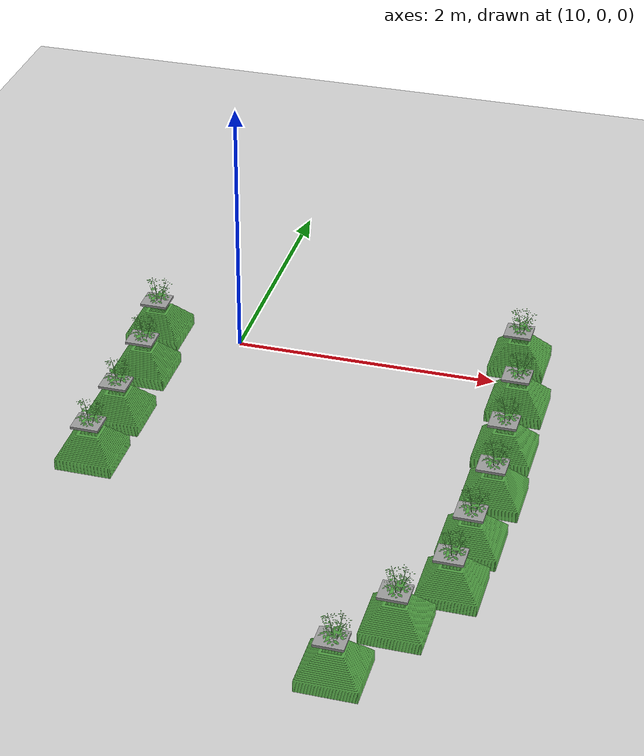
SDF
<sdf version="1.6">
 <world name="default">
  <model name="ground_plane">
   <static>1</static>
   <link name="link">
    <collision name="collision">
     <geometry><plane><normal>0 0 1</normal><size>100 100</size></plane></geometry>
     <surface><friction><ode><mu>100</mu><mu2>50</mu2></ode></friction></surface>
    </collision>
    <visual name="visual">
     <cast_shadows>0</cast_shadows>
     <geometry><plane><normal>0 0 1</normal><size>100 100</size></plane></geometry>
     <material>
      <script><uri>file://media/materials/scripts/gazebo.material</uri><name>Gazebo/Grey</name></script>
     </material>
    </visual>
   </link>
  </model>
  <model name="plant_0">
   <link name="link_0">
    <inertial>
     <mass>1</mass>
     <inertia>
      <ixx>0.0134051</ixx>
      <ixy>0</ixy>
      <ixz>0</ixz>
      <iyy>0.0134051</iyy>
      <iyz>0</iyz>
      <izz>0.0254102</izz>
     </inertia>
    </inertial>
    <gravity>0</gravity>
    <visual name="visual">
     <geometry><mesh><uri>model://square_pot/pot.stl</uri><scale>0.033 0.033 0.02</scale></mesh></geometry>
     <material>
      <lighting>1</lighting>
      <script><uri>file://media/materials/scripts/gazebo.material</uri><name>Gazebo/Grass</name></script>
      <ambient>0.3 0.3 0.3 1</ambient>
      <diffuse>0.7 0.7 0.7 1</diffuse>
      <specular>0.01 0.01 0.01 1</specular>
      <emissive>0 0 0 1</emissive>
      <shader type="vertex"><normal_map>__default__</normal_map></shader>
     </material>
    </visual>
    <collision name="collision">
     <pose>0 0 0.25 0 -0 0</pose>
     <geometry><box><size>0.4 0.4 0.4</size></box></geometry>
     <surface>
      <friction>
       <ode><mu>1</mu><mu2>1</mu2><fdir1>0 0 0</fdir1><slip1>0</slip1><slip2>0</slip2></ode>
       <torsional>
        <coefficient>1</coefficient>
        <patch_radius>0</patch_radius>
        <surface_radius>0</surface_radius>
        <use_patch_radius>1</use_patch_radius>
        <ode><slip>0</slip></ode>
       </torsional>
      </friction>
      <bounce><restitution_coefficient>0</restitution_coefficient><threshold>1e+06</threshold></bounce>
      <contact>
       <collide_without_contact>1</collide_without_contact>
       <collide_without_contact_bitmask>1</collide_without_contact_bitmask>
       <collide_bitmask>1</collide_bitmask>
       <ode>
        <soft_cfm>0</soft_cfm>
        <soft_erp>0.2</soft_erp>
        <kp>1e+13</kp>
        <kd>1</kd>
        <max_vel>0.01</max_vel>
        <min_depth>0</min_depth>
       </ode>
       <bullet>
        <split_impulse>1</split_impulse>
        <split_impulse_penetration_threshold>-0.01</split_impulse_penetration_threshold>
        <soft_cfm>0</soft_cfm>
        <soft_erp>0.2</soft_erp>
        <kp>1e+13</kp>
        <kd>1</kd>
       </bullet>
      </contact>
     </surface>
    </collision>
   </link>
   <link name="link_0_0">
    <pose>-0.011441 -0.008338 0.308474 0 -0 0</pose>
    <inertial>
     <mass>0.000736153</mass>
     <inertia>
      <ixx>2.11165e-06</ixx>
      <ixy>0</ixy>
      <ixz>0</ixz>
      <iyy>2.64382e-06</iyy>
      <iyz>0</iyz>
      <izz>4.70976e-06</izz>
     </inertia>
    </inertial>
    <visual name="visual">
     <geometry><box><size>0.206678 0.18452 0.019291</size></box></geometry>
     <material>
      <lighting>1</lighting>
      <script><uri>file://media/materials/scripts/gazebo.material</uri><name>Gazebo/Grey</name></script>
      <ambient>0.3 0.3 0.3 1</ambient>
      <diffuse>0.7 0.7 0.7 1</diffuse>
      <specular>0.01 0.01 0.01 1</specular>
      <emissive>0 0 0 1</emissive>
     </material>
    </visual>
    <collision name="collision">
     <geometry><box><size>0.206678 0.18452 0.019291</size></box></geometry>
     <surface>
      <friction>
       <ode><mu>1</mu><mu2>1</mu2><fdir1>0 0 0</fdir1><slip1>0</slip1><slip2>0</slip2></ode>
       <torsional>
        <coefficient>1</coefficient>
        <patch_radius>0</patch_radius>
        <surface_radius>0</surface_radius>
        <use_patch_radius>1</use_patch_radius>
        <ode><slip>0</slip></ode>
       </torsional>
      </friction>
      <bounce><restitution_coefficient>0</restitution_coefficient><threshold>1e+06</threshold></bounce>
      <contact>
       <collide_without_contact>0</collide_without_contact>
       <collide_without_contact_bitmask>1</collide_without_contact_bitmask>
       <collide_bitmask>1</collide_bitmask>
       <ode>
        <soft_cfm>0</soft_cfm>
        <soft_erp>0.2</soft_erp>
        <kp>1e+13</kp>
        <kd>1</kd>
        <max_vel>0.01</max_vel>
        <min_depth>0</min_depth>
       </ode>
       <bullet>
        <split_impulse>1</split_impulse>
        <split_impulse_penetration_threshold>-0.01</split_impulse_penetration_threshold>
        <soft_cfm>0</soft_cfm>
        <soft_erp>0.2</soft_erp>
        <kp>1e+13</kp>
        <kd>1</kd>
       </bullet>
      </contact>
     </surface>
    </collision>
   </link>
   <static>1</static>
   <pose>9.44824 -1.19741 0 0 -0 0</pose>
  </model>
  <model name="plant_104">
   <link name="link_0">
    <inertial>
     <mass>1</mass>
     <inertia>
      <ixx>0.0134051</ixx>
      <ixy>0</ixy>
      <ixz>0</ixz>
      <iyy>0.0134051</iyy>
      <iyz>0</iyz>
      <izz>0.0254102</izz>
     </inertia>
    </inertial>
    <gravity>0</gravity>
    <visual name="visual">
     <geometry><mesh><uri>model://square_pot/pot.stl</uri><scale>0.033 0.033 0.02</scale></mesh></geometry>
     <material>
      <lighting>1</lighting>
      <script><uri>file://media/materials/scripts/gazebo.material</uri><name>Gazebo/Grass</name></script>
      <ambient>0.3 0.3 0.3 1</ambient>
      <diffuse>0.7 0.7 0.7 1</diffuse>
      <specular>0.01 0.01 0.01 1</specular>
      <emissive>0 0 0 1</emissive>
      <shader type="vertex"><normal_map>__default__</normal_map></shader>
     </material>
    </visual>
    <collision name="collision">
     <pose>0 0 0.25 0 -0 0</pose>
     <geometry><box><size>0.4 0.4 0.4</size></box></geometry>
     <surface>
      <friction>
       <ode><mu>1</mu><mu2>1</mu2><fdir1>0 0 0</fdir1><slip1>0</slip1><slip2>0</slip2></ode>
       <torsional>
        <coefficient>1</coefficient>
        <patch_radius>0</patch_radius>
        <surface_radius>0</surface_radius>
        <use_patch_radius>1</use_patch_radius>
        <ode><slip>0</slip></ode>
       </torsional>
      </friction>
      <bounce><restitution_coefficient>0</restitution_coefficient><threshold>1e+06</threshold></bounce>
      <contact>
       <collide_without_contact>1</collide_without_contact>
       <collide_without_contact_bitmask>1</collide_without_contact_bitmask>
       <collide_bitmask>1</collide_bitmask>
       <ode>
        <soft_cfm>0</soft_cfm>
        <soft_erp>0.2</soft_erp>
        <kp>1e+13</kp>
        <kd>1</kd>
        <max_vel>0.01</max_vel>
        <min_depth>0</min_depth>
       </ode>
       <bullet>
        <split_impulse>1</split_impulse>
        <split_impulse_penetration_threshold>-0.01</split_impulse_penetration_threshold>
        <soft_cfm>0</soft_cfm>
        <soft_erp>0.2</soft_erp>
        <kp>1e+13</kp>
        <kd>1</kd>
       </bullet>
      </contact>
     </surface>
    </collision>
   </link>
   <link name="link_0_0">
    <pose>-0.011441 -0.008338 0.308474 0 -0 0</pose>
    <inertial>
     <mass>0.000736153</mass>
     <inertia>
      <ixx>2.11165e-06</ixx>
      <ixy>0</ixy>
      <ixz>0</ixz>
      <iyy>2.64382e-06</iyy>
      <iyz>0</iyz>
      <izz>4.70976e-06</izz>
     </inertia>
    </inertial>
    <visual name="visual">
     <geometry><box><size>0.206678 0.18452 0.019291</size></box></geometry>
     <material>
      <lighting>1</lighting>
      <script><uri>file://media/materials/scripts/gazebo.material</uri><name>Gazebo/Grey</name></script>
      <ambient>0.3 0.3 0.3 1</ambient>
      <diffuse>0.7 0.7 0.7 1</diffuse>
      <specular>0.01 0.01 0.01 1</specular>
      <emissive>0 0 0 1</emissive>
     </material>
    </visual>
    <collision name="collision">
     <geometry><box><size>0.206678 0.18452 0.019291</size></box></geometry>
     <surface>
      <friction>
       <ode><mu>1</mu><mu2>1</mu2><fdir1>0 0 0</fdir1><slip1>0</slip1><slip2>0</slip2></ode>
       <torsional>
        <coefficient>1</coefficient>
        <patch_radius>0</patch_radius>
        <surface_radius>0</surface_radius>
        <use_patch_radius>1</use_patch_radius>
        <ode><slip>0</slip></ode>
       </torsional>
      </friction>
      <bounce><restitution_coefficient>0</restitution_coefficient><threshold>1e+06</threshold></bounce>
      <contact>
       <collide_without_contact>0</collide_without_contact>
       <collide_without_contact_bitmask>1</collide_without_contact_bitmask>
       <collide_bitmask>1</collide_bitmask>
       <ode>
        <soft_cfm>0</soft_cfm>
        <soft_erp>0.2</soft_erp>
        <kp>1e+13</kp>
        <kd>1</kd>
        <max_vel>0.01</max_vel>
        <min_depth>0</min_depth>
       </ode>
       <bullet>
        <split_impulse>1</split_impulse>
        <split_impulse_penetration_threshold>-0.01</split_impulse_penetration_threshold>
        <soft_cfm>0</soft_cfm>
        <soft_erp>0.2</soft_erp>
        <kp>1e+13</kp>
        <kd>1</kd>
       </bullet>
      </contact>
     </surface>
    </collision>
   </link>
   <static>1</static>
   <pose>9.43548 -1.73197 0 0 -0 0</pose>
  </model>
  <model name="plant_107">
   <link name="link_0">
    <inertial>
     <mass>1</mass>
     <inertia>
      <ixx>0.0134051</ixx>
      <ixy>0</ixy>
      <ixz>0</ixz>
      <iyy>0.0134051</iyy>
      <iyz>0</iyz>
      <izz>0.0254102</izz>
     </inertia>
    </inertial>
    <gravity>0</gravity>
    <visual name="visual">
     <geometry><mesh><uri>model://square_pot/pot.stl</uri><scale>0.033 0.033 0.02</scale></mesh></geometry>
     <material>
      <lighting>1</lighting>
      <script><uri>file://media/materials/scripts/gazebo.material</uri><name>Gazebo/Grass</name></script>
      <ambient>0.3 0.3 0.3 1</ambient>
      <diffuse>0.7 0.7 0.7 1</diffuse>
      <specular>0.01 0.01 0.01 1</specular>
      <emissive>0 0 0 1</emissive>
      <shader type="vertex"><normal_map>__default__</normal_map></shader>
     </material>
    </visual>
    <collision name="collision">
     <pose>0 0 0.25 0 -0 0</pose>
     <geometry><box><size>0.4 0.4 0.4</size></box></geometry>
     <surface>
      <friction>
       <ode><mu>1</mu><mu2>1</mu2><fdir1>0 0 0</fdir1><slip1>0</slip1><slip2>0</slip2></ode>
       <torsional>
        <coefficient>1</coefficient>
        <patch_radius>0</patch_radius>
        <surface_radius>0</surface_radius>
        <use_patch_radius>1</use_patch_radius>
        <ode><slip>0</slip></ode>
       </torsional>
      </friction>
      <bounce><restitution_coefficient>0</restitution_coefficient><threshold>1e+06</threshold></bounce>
      <contact>
       <collide_without_contact>1</collide_without_contact>
       <collide_without_contact_bitmask>1</collide_without_contact_bitmask>
       <collide_bitmask>1</collide_bitmask>
       <ode>
        <soft_cfm>0</soft_cfm>
        <soft_erp>0.2</soft_erp>
        <kp>1e+13</kp>
        <kd>1</kd>
        <max_vel>0.01</max_vel>
        <min_depth>0</min_depth>
       </ode>
       <bullet>
        <split_impulse>1</split_impulse>
        <split_impulse_penetration_threshold>-0.01</split_impulse_penetration_threshold>
        <soft_cfm>0</soft_cfm>
        <soft_erp>0.2</soft_erp>
        <kp>1e+13</kp>
        <kd>1</kd>
       </bullet>
      </contact>
     </surface>
    </collision>
   </link>
   <link name="link_0_0">
    <pose>-0.011441 -0.008338 0.308474 0 -0 0</pose>
    <inertial>
     <mass>0.000736153</mass>
     <inertia>
      <ixx>2.11165e-06</ixx>
      <ixy>0</ixy>
      <ixz>0</ixz>
      <iyy>2.64382e-06</iyy>
      <iyz>0</iyz>
      <izz>4.70976e-06</izz>
     </inertia>
    </inertial>
    <visual name="visual">
     <geometry><box><size>0.206678 0.18452 0.019291</size></box></geometry>
     <material>
      <lighting>1</lighting>
      <script><uri>file://media/materials/scripts/gazebo.material</uri><name>Gazebo/Grey</name></script>
      <ambient>0.3 0.3 0.3 1</ambient>
      <diffuse>0.7 0.7 0.7 1</diffuse>
      <specular>0.01 0.01 0.01 1</specular>
      <emissive>0 0 0 1</emissive>
     </material>
    </visual>
    <collision name="collision">
     <geometry><box><size>0.206678 0.18452 0.019291</size></box></geometry>
     <surface>
      <friction>
       <ode><mu>1</mu><mu2>1</mu2><fdir1>0 0 0</fdir1><slip1>0</slip1><slip2>0</slip2></ode>
       <torsional>
        <coefficient>1</coefficient>
        <patch_radius>0</patch_radius>
        <surface_radius>0</surface_radius>
        <use_patch_radius>1</use_patch_radius>
        <ode><slip>0</slip></ode>
       </torsional>
      </friction>
      <bounce><restitution_coefficient>0</restitution_coefficient><threshold>1e+06</threshold></bounce>
      <contact>
       <collide_without_contact>0</collide_without_contact>
       <collide_without_contact_bitmask>1</collide_without_contact_bitmask>
       <collide_bitmask>1</collide_bitmask>
       <ode>
        <soft_cfm>0</soft_cfm>
        <soft_erp>0.2</soft_erp>
        <kp>1e+13</kp>
        <kd>1</kd>
        <max_vel>0.01</max_vel>
        <min_depth>0</min_depth>
       </ode>
       <bullet>
        <split_impulse>1</split_impulse>
        <split_impulse_penetration_threshold>-0.01</split_impulse_penetration_threshold>
        <soft_cfm>0</soft_cfm>
        <soft_erp>0.2</soft_erp>
        <kp>1e+13</kp>
        <kd>1</kd>
       </bullet>
      </contact>
     </surface>
    </collision>
   </link>
   <static>1</static>
   <pose>9.43391 -0.585748 0 0 -0 0</pose>
  </model>
  <model name="plant_108">
   <link name="link_0">
    <inertial>
     <mass>1</mass>
     <inertia>
      <ixx>0.0134051</ixx>
      <ixy>0</ixy>
      <ixz>0</ixz>
      <iyy>0.0134051</iyy>
      <iyz>0</iyz>
      <izz>0.0254102</izz>
     </inertia>
    </inertial>
    <gravity>0</gravity>
    <visual name="visual">
     <geometry><mesh><uri>model://square_pot/pot.stl</uri><scale>0.033 0.033 0.02</scale></mesh></geometry>
     <material>
      <lighting>1</lighting>
      <script><uri>file://media/materials/scripts/gazebo.material</uri><name>Gazebo/Grass</name></script>
      <ambient>0.3 0.3 0.3 1</ambient>
      <diffuse>0.7 0.7 0.7 1</diffuse>
      <specular>0.01 0.01 0.01 1</specular>
      <emissive>0 0 0 1</emissive>
      <shader type="vertex"><normal_map>__default__</normal_map></shader>
     </material>
    </visual>
    <collision name="collision">
     <pose>0 0 0.25 0 -0 0</pose>
     <geometry><box><size>0.4 0.4 0.4</size></box></geometry>
     <surface>
      <friction>
       <ode><mu>1</mu><mu2>1</mu2><fdir1>0 0 0</fdir1><slip1>0</slip1><slip2>0</slip2></ode>
       <torsional>
        <coefficient>1</coefficient>
        <patch_radius>0</patch_radius>
        <surface_radius>0</surface_radius>
        <use_patch_radius>1</use_patch_radius>
        <ode><slip>0</slip></ode>
       </torsional>
      </friction>
      <bounce><restitution_coefficient>0</restitution_coefficient><threshold>1e+06</threshold></bounce>
      <contact>
       <collide_without_contact>1</collide_without_contact>
       <collide_without_contact_bitmask>1</collide_without_contact_bitmask>
       <collide_bitmask>1</collide_bitmask>
       <ode>
        <soft_cfm>0</soft_cfm>
        <soft_erp>0.2</soft_erp>
        <kp>1e+13</kp>
        <kd>1</kd>
        <max_vel>0.01</max_vel>
        <min_depth>0</min_depth>
       </ode>
       <bullet>
        <split_impulse>1</split_impulse>
        <split_impulse_penetration_threshold>-0.01</split_impulse_penetration_threshold>
        <soft_cfm>0</soft_cfm>
        <soft_erp>0.2</soft_erp>
        <kp>1e+13</kp>
        <kd>1</kd>
       </bullet>
      </contact>
     </surface>
    </collision>
   </link>
   <link name="link_0_0">
    <pose>-0.011441 -0.008338 0.308474 0 -0 0</pose>
    <inertial>
     <mass>0.000736153</mass>
     <inertia>
      <ixx>2.11165e-06</ixx>
      <ixy>0</ixy>
      <ixz>0</ixz>
      <iyy>2.64382e-06</iyy>
      <iyz>0</iyz>
      <izz>4.70976e-06</izz>
     </inertia>
    </inertial>
    <visual name="visual">
     <geometry><box><size>0.206678 0.18452 0.019291</size></box></geometry>
     <material>
      <lighting>1</lighting>
      <script><uri>file://media/materials/scripts/gazebo.material</uri><name>Gazebo/Grey</name></script>
      <ambient>0.3 0.3 0.3 1</ambient>
      <diffuse>0.7 0.7 0.7 1</diffuse>
      <specular>0.01 0.01 0.01 1</specular>
      <emissive>0 0 0 1</emissive>
     </material>
    </visual>
    <collision name="collision">
     <geometry><box><size>0.206678 0.18452 0.019291</size></box></geometry>
     <surface>
      <friction>
       <ode><mu>1</mu><mu2>1</mu2><fdir1>0 0 0</fdir1><slip1>0</slip1><slip2>0</slip2></ode>
       <torsional>
        <coefficient>1</coefficient>
        <patch_radius>0</patch_radius>
        <surface_radius>0</surface_radius>
        <use_patch_radius>1</use_patch_radius>
        <ode><slip>0</slip></ode>
       </torsional>
      </friction>
      <bounce><restitution_coefficient>0</restitution_coefficient><threshold>1e+06</threshold></bounce>
      <contact>
       <collide_without_contact>0</collide_without_contact>
       <collide_without_contact_bitmask>1</collide_without_contact_bitmask>
       <collide_bitmask>1</collide_bitmask>
       <ode>
        <soft_cfm>0</soft_cfm>
        <soft_erp>0.2</soft_erp>
        <kp>1e+13</kp>
        <kd>1</kd>
        <max_vel>0.01</max_vel>
        <min_depth>0</min_depth>
       </ode>
       <bullet>
        <split_impulse>1</split_impulse>
        <split_impulse_penetration_threshold>-0.01</split_impulse_penetration_threshold>
        <soft_cfm>0</soft_cfm>
        <soft_erp>0.2</soft_erp>
        <kp>1e+13</kp>
        <kd>1</kd>
       </bullet>
      </contact>
     </surface>
    </collision>
   </link>
   <static>1</static>
   <pose>9.36044 -0.042276 0 0 -0 0</pose>
  </model>
  <model name="plant_111">
   <link name="link_0">
    <inertial>
     <mass>1</mass>
     <inertia>
      <ixx>0.0134051</ixx>
      <ixy>0</ixy>
      <ixz>0</ixz>
      <iyy>0.0134051</iyy>
      <iyz>0</iyz>
      <izz>0.0254102</izz>
     </inertia>
    </inertial>
    <gravity>0</gravity>
    <visual name="visual">
     <geometry><mesh><uri>model://square_pot/pot.stl</uri><scale>0.033 0.033 0.02</scale></mesh></geometry>
     <material>
      <lighting>1</lighting>
      <script><uri>file://media/materials/scripts/gazebo.material</uri><name>Gazebo/Grass</name></script>
      <ambient>0.3 0.3 0.3 1</ambient>
      <diffuse>0.7 0.7 0.7 1</diffuse>
      <specular>0.01 0.01 0.01 1</specular>
      <emissive>0 0 0 1</emissive>
      <shader type="vertex"><normal_map>__default__</normal_map></shader>
     </material>
    </visual>
    <collision name="collision">
     <pose>0 0 0.25 0 -0 0</pose>
     <geometry><box><size>0.4 0.4 0.4</size></box></geometry>
     <surface>
      <friction>
       <ode><mu>1</mu><mu2>1</mu2><fdir1>0 0 0</fdir1><slip1>0</slip1><slip2>0</slip2></ode>
       <torsional>
        <coefficient>1</coefficient>
        <patch_radius>0</patch_radius>
        <surface_radius>0</surface_radius>
        <use_patch_radius>1</use_patch_radius>
        <ode><slip>0</slip></ode>
       </torsional>
      </friction>
      <bounce><restitution_coefficient>0</restitution_coefficient><threshold>1e+06</threshold></bounce>
      <contact>
       <collide_without_contact>1</collide_without_contact>
       <collide_without_contact_bitmask>1</collide_without_contact_bitmask>
       <collide_bitmask>1</collide_bitmask>
       <ode>
        <soft_cfm>0</soft_cfm>
        <soft_erp>0.2</soft_erp>
        <kp>1e+13</kp>
        <kd>1</kd>
        <max_vel>0.01</max_vel>
        <min_depth>0</min_depth>
       </ode>
       <bullet>
        <split_impulse>1</split_impulse>
        <split_impulse_penetration_threshold>-0.01</split_impulse_penetration_threshold>
        <soft_cfm>0</soft_cfm>
        <soft_erp>0.2</soft_erp>
        <kp>1e+13</kp>
        <kd>1</kd>
       </bullet>
      </contact>
     </surface>
    </collision>
   </link>
   <link name="link_0_0">
    <pose>-0.011441 -0.008338 0.308474 0 -0 0</pose>
    <inertial>
     <mass>0.000736153</mass>
     <inertia>
      <ixx>2.11165e-06</ixx>
      <ixy>0</ixy>
      <ixz>0</ixz>
      <iyy>2.64382e-06</iyy>
      <iyz>0</iyz>
      <izz>4.70976e-06</izz>
     </inertia>
    </inertial>
    <visual name="visual">
     <geometry><box><size>0.206678 0.18452 0.019291</size></box></geometry>
     <material>
      <lighting>1</lighting>
      <script><uri>file://media/materials/scripts/gazebo.material</uri><name>Gazebo/Grey</name></script>
      <ambient>0.3 0.3 0.3 1</ambient>
      <diffuse>0.7 0.7 0.7 1</diffuse>
      <specular>0.01 0.01 0.01 1</specular>
      <emissive>0 0 0 1</emissive>
     </material>
    </visual>
    <collision name="collision">
     <geometry><box><size>0.206678 0.18452 0.019291</size></box></geometry>
     <surface>
      <friction>
       <ode><mu>1</mu><mu2>1</mu2><fdir1>0 0 0</fdir1><slip1>0</slip1><slip2>0</slip2></ode>
       <torsional>
        <coefficient>1</coefficient>
        <patch_radius>0</patch_radius>
        <surface_radius>0</surface_radius>
        <use_patch_radius>1</use_patch_radius>
        <ode><slip>0</slip></ode>
       </torsional>
      </friction>
      <bounce><restitution_coefficient>0</restitution_coefficient><threshold>1e+06</threshold></bounce>
      <contact>
       <collide_without_contact>0</collide_without_contact>
       <collide_without_contact_bitmask>1</collide_without_contact_bitmask>
       <collide_bitmask>1</collide_bitmask>
       <ode>
        <soft_cfm>0</soft_cfm>
        <soft_erp>0.2</soft_erp>
        <kp>1e+13</kp>
        <kd>1</kd>
        <max_vel>0.01</max_vel>
        <min_depth>0</min_depth>
       </ode>
       <bullet>
        <split_impulse>1</split_impulse>
        <split_impulse_penetration_threshold>-0.01</split_impulse_penetration_threshold>
        <soft_cfm>0</soft_cfm>
        <soft_erp>0.2</soft_erp>
        <kp>1e+13</kp>
        <kd>1</kd>
       </bullet>
      </contact>
     </surface>
    </collision>
   </link>
   <static>1</static>
   <pose>12.1388 0.270512 0 0 -0 0</pose>
  </model>
  <model name="plant_112">
   <link name="link_0">
    <inertial>
     <mass>1</mass>
     <inertia>
      <ixx>0.0134051</ixx>
      <ixy>0</ixy>
      <ixz>0</ixz>
      <iyy>0.0134051</iyy>
      <iyz>0</iyz>
      <izz>0.0254102</izz>
     </inertia>
    </inertial>
    <gravity>0</gravity>
    <visual name="visual">
     <geometry><mesh><uri>model://square_pot/pot.stl</uri><scale>0.033 0.033 0.02</scale></mesh></geometry>
     <material>
      <lighting>1</lighting>
      <script><uri>file://media/materials/scripts/gazebo.material</uri><name>Gazebo/Grass</name></script>
      <ambient>0.3 0.3 0.3 1</ambient>
      <diffuse>0.7 0.7 0.7 1</diffuse>
      <specular>0.01 0.01 0.01 1</specular>
      <emissive>0 0 0 1</emissive>
      <shader type="vertex"><normal_map>__default__</normal_map></shader>
     </material>
    </visual>
    <collision name="collision">
     <pose>0 0 0.25 0 -0 0</pose>
     <geometry><box><size>0.4 0.4 0.4</size></box></geometry>
     <surface>
      <friction>
       <ode><mu>1</mu><mu2>1</mu2><fdir1>0 0 0</fdir1><slip1>0</slip1><slip2>0</slip2></ode>
       <torsional>
        <coefficient>1</coefficient>
        <patch_radius>0</patch_radius>
        <surface_radius>0</surface_radius>
        <use_patch_radius>1</use_patch_radius>
        <ode><slip>0</slip></ode>
       </torsional>
      </friction>
      <bounce><restitution_coefficient>0</restitution_coefficient><threshold>1e+06</threshold></bounce>
      <contact>
       <collide_without_contact>1</collide_without_contact>
       <collide_without_contact_bitmask>1</collide_without_contact_bitmask>
       <collide_bitmask>1</collide_bitmask>
       <ode>
        <soft_cfm>0</soft_cfm>
        <soft_erp>0.2</soft_erp>
        <kp>1e+13</kp>
        <kd>1</kd>
        <max_vel>0.01</max_vel>
        <min_depth>0</min_depth>
       </ode>
       <bullet>
        <split_impulse>1</split_impulse>
        <split_impulse_penetration_threshold>-0.01</split_impulse_penetration_threshold>
        <soft_cfm>0</soft_cfm>
        <soft_erp>0.2</soft_erp>
        <kp>1e+13</kp>
        <kd>1</kd>
       </bullet>
      </contact>
     </surface>
    </collision>
   </link>
   <link name="link_0_0">
    <pose>-0.011441 -0.008338 0.308474 0 -0 0</pose>
    <inertial>
     <mass>0.000736153</mass>
     <inertia>
      <ixx>2.11165e-06</ixx>
      <ixy>0</ixy>
      <ixz>0</ixz>
      <iyy>2.64382e-06</iyy>
      <iyz>0</iyz>
      <izz>4.70976e-06</izz>
     </inertia>
    </inertial>
    <visual name="visual">
     <geometry><box><size>0.206678 0.18452 0.019291</size></box></geometry>
     <material>
      <lighting>1</lighting>
      <script><uri>file://media/materials/scripts/gazebo.material</uri><name>Gazebo/Grey</name></script>
      <ambient>0.3 0.3 0.3 1</ambient>
      <diffuse>0.7 0.7 0.7 1</diffuse>
      <specular>0.01 0.01 0.01 1</specular>
      <emissive>0 0 0 1</emissive>
     </material>
    </visual>
    <collision name="collision">
     <geometry><box><size>0.206678 0.18452 0.019291</size></box></geometry>
     <surface>
      <friction>
       <ode><mu>1</mu><mu2>1</mu2><fdir1>0 0 0</fdir1><slip1>0</slip1><slip2>0</slip2></ode>
       <torsional>
        <coefficient>1</coefficient>
        <patch_radius>0</patch_radius>
        <surface_radius>0</surface_radius>
        <use_patch_radius>1</use_patch_radius>
        <ode><slip>0</slip></ode>
       </torsional>
      </friction>
      <bounce><restitution_coefficient>0</restitution_coefficient><threshold>1e+06</threshold></bounce>
      <contact>
       <collide_without_contact>0</collide_without_contact>
       <collide_without_contact_bitmask>1</collide_without_contact_bitmask>
       <collide_bitmask>1</collide_bitmask>
       <ode>
        <soft_cfm>0</soft_cfm>
        <soft_erp>0.2</soft_erp>
        <kp>1e+13</kp>
        <kd>1</kd>
        <max_vel>0.01</max_vel>
        <min_depth>0</min_depth>
       </ode>
       <bullet>
        <split_impulse>1</split_impulse>
        <split_impulse_penetration_threshold>-0.01</split_impulse_penetration_threshold>
        <soft_cfm>0</soft_cfm>
        <soft_erp>0.2</soft_erp>
        <kp>1e+13</kp>
        <kd>1</kd>
       </bullet>
      </contact>
     </surface>
    </collision>
   </link>
   <static>1</static>
   <pose>12.2401 -0.322103 0 0 -0 0</pose>
  </model>
  <model name="plant_113">
   <link name="link_0">
    <inertial>
     <mass>1</mass>
     <inertia>
      <ixx>0.0134051</ixx>
      <ixy>0</ixy>
      <ixz>0</ixz>
      <iyy>0.0134051</iyy>
      <iyz>0</iyz>
      <izz>0.0254102</izz>
     </inertia>
    </inertial>
    <gravity>0</gravity>
    <visual name="visual">
     <geometry><mesh><uri>model://square_pot/pot.stl</uri><scale>0.033 0.033 0.02</scale></mesh></geometry>
     <material>
      <lighting>1</lighting>
      <script><uri>file://media/materials/scripts/gazebo.material</uri><name>Gazebo/Grass</name></script>
      <ambient>0.3 0.3 0.3 1</ambient>
      <diffuse>0.7 0.7 0.7 1</diffuse>
      <specular>0.01 0.01 0.01 1</specular>
      <emissive>0 0 0 1</emissive>
      <shader type="vertex"><normal_map>__default__</normal_map></shader>
     </material>
    </visual>
    <collision name="collision">
     <pose>0 0 0.25 0 -0 0</pose>
     <geometry><box><size>0.4 0.4 0.4</size></box></geometry>
     <surface>
      <friction>
       <ode><mu>1</mu><mu2>1</mu2><fdir1>0 0 0</fdir1><slip1>0</slip1><slip2>0</slip2></ode>
       <torsional>
        <coefficient>1</coefficient>
        <patch_radius>0</patch_radius>
        <surface_radius>0</surface_radius>
        <use_patch_radius>1</use_patch_radius>
        <ode><slip>0</slip></ode>
       </torsional>
      </friction>
      <bounce><restitution_coefficient>0</restitution_coefficient><threshold>1e+06</threshold></bounce>
      <contact>
       <collide_without_contact>1</collide_without_contact>
       <collide_without_contact_bitmask>1</collide_without_contact_bitmask>
       <collide_bitmask>1</collide_bitmask>
       <ode>
        <soft_cfm>0</soft_cfm>
        <soft_erp>0.2</soft_erp>
        <kp>1e+13</kp>
        <kd>1</kd>
        <max_vel>0.01</max_vel>
        <min_depth>0</min_depth>
       </ode>
       <bullet>
        <split_impulse>1</split_impulse>
        <split_impulse_penetration_threshold>-0.01</split_impulse_penetration_threshold>
        <soft_cfm>0</soft_cfm>
        <soft_erp>0.2</soft_erp>
        <kp>1e+13</kp>
        <kd>1</kd>
       </bullet>
      </contact>
     </surface>
    </collision>
   </link>
   <link name="link_0_0">
    <pose>-0.011441 -0.008338 0.308474 0 -0 0</pose>
    <inertial>
     <mass>0.000736153</mass>
     <inertia>
      <ixx>2.11165e-06</ixx>
      <ixy>0</ixy>
      <ixz>0</ixz>
      <iyy>2.64382e-06</iyy>
      <iyz>0</iyz>
      <izz>4.70976e-06</izz>
     </inertia>
    </inertial>
    <visual name="visual">
     <geometry><box><size>0.206678 0.18452 0.019291</size></box></geometry>
     <material>
      <lighting>1</lighting>
      <script><uri>file://media/materials/scripts/gazebo.material</uri><name>Gazebo/Grey</name></script>
      <ambient>0.3 0.3 0.3 1</ambient>
      <diffuse>0.7 0.7 0.7 1</diffuse>
      <specular>0.01 0.01 0.01 1</specular>
      <emissive>0 0 0 1</emissive>
     </material>
    </visual>
    <collision name="collision">
     <geometry><box><size>0.206678 0.18452 0.019291</size></box></geometry>
     <surface>
      <friction>
       <ode><mu>1</mu><mu2>1</mu2><fdir1>0 0 0</fdir1><slip1>0</slip1><slip2>0</slip2></ode>
       <torsional>
        <coefficient>1</coefficient>
        <patch_radius>0</patch_radius>
        <surface_radius>0</surface_radius>
        <use_patch_radius>1</use_patch_radius>
        <ode><slip>0</slip></ode>
       </torsional>
      </friction>
      <bounce><restitution_coefficient>0</restitution_coefficient><threshold>1e+06</threshold></bounce>
      <contact>
       <collide_without_contact>0</collide_without_contact>
       <collide_without_contact_bitmask>1</collide_without_contact_bitmask>
       <collide_bitmask>1</collide_bitmask>
       <ode>
        <soft_cfm>0</soft_cfm>
        <soft_erp>0.2</soft_erp>
        <kp>1e+13</kp>
        <kd>1</kd>
        <max_vel>0.01</max_vel>
        <min_depth>0</min_depth>
       </ode>
       <bullet>
        <split_impulse>1</split_impulse>
        <split_impulse_penetration_threshold>-0.01</split_impulse_penetration_threshold>
        <soft_cfm>0</soft_cfm>
        <soft_erp>0.2</soft_erp>
        <kp>1e+13</kp>
        <kd>1</kd>
       </bullet>
      </contact>
     </surface>
    </collision>
   </link>
   <static>1</static>
   <pose>12.2636 -0.919105 0 0 -0 0</pose>
  </model>
  <model name="plant_114">
   <link name="link_0">
    <inertial>
     <mass>1</mass>
     <inertia>
      <ixx>0.0134051</ixx>
      <ixy>0</ixy>
      <ixz>0</ixz>
      <iyy>0.0134051</iyy>
      <iyz>0</iyz>
      <izz>0.0254102</izz>
     </inertia>
    </inertial>
    <gravity>0</gravity>
    <visual name="visual">
     <geometry><mesh><uri>model://square_pot/pot.stl</uri><scale>0.033 0.033 0.02</scale></mesh></geometry>
     <material>
      <lighting>1</lighting>
      <script><uri>file://media/materials/scripts/gazebo.material</uri><name>Gazebo/Grass</name></script>
      <ambient>0.3 0.3 0.3 1</ambient>
      <diffuse>0.7 0.7 0.7 1</diffuse>
      <specular>0.01 0.01 0.01 1</specular>
      <emissive>0 0 0 1</emissive>
      <shader type="vertex"><normal_map>__default__</normal_map></shader>
     </material>
    </visual>
    <collision name="collision">
     <pose>0 0 0.25 0 -0 0</pose>
     <geometry><box><size>0.4 0.4 0.4</size></box></geometry>
     <surface>
      <friction>
       <ode><mu>1</mu><mu2>1</mu2><fdir1>0 0 0</fdir1><slip1>0</slip1><slip2>0</slip2></ode>
       <torsional>
        <coefficient>1</coefficient>
        <patch_radius>0</patch_radius>
        <surface_radius>0</surface_radius>
        <use_patch_radius>1</use_patch_radius>
        <ode><slip>0</slip></ode>
       </torsional>
      </friction>
      <bounce><restitution_coefficient>0</restitution_coefficient><threshold>1e+06</threshold></bounce>
      <contact>
       <collide_without_contact>1</collide_without_contact>
       <collide_without_contact_bitmask>1</collide_without_contact_bitmask>
       <collide_bitmask>1</collide_bitmask>
       <ode>
        <soft_cfm>0</soft_cfm>
        <soft_erp>0.2</soft_erp>
        <kp>1e+13</kp>
        <kd>1</kd>
        <max_vel>0.01</max_vel>
        <min_depth>0</min_depth>
       </ode>
       <bullet>
        <split_impulse>1</split_impulse>
        <split_impulse_penetration_threshold>-0.01</split_impulse_penetration_threshold>
        <soft_cfm>0</soft_cfm>
        <soft_erp>0.2</soft_erp>
        <kp>1e+13</kp>
        <kd>1</kd>
       </bullet>
      </contact>
     </surface>
    </collision>
   </link>
   <link name="link_0_0">
    <pose>-0.011441 -0.008338 0.308474 0 -0 0</pose>
    <inertial>
     <mass>0.000736153</mass>
     <inertia>
      <ixx>2.11165e-06</ixx>
      <ixy>0</ixy>
      <ixz>0</ixz>
      <iyy>2.64382e-06</iyy>
      <iyz>0</iyz>
      <izz>4.70976e-06</izz>
     </inertia>
    </inertial>
    <visual name="visual">
     <geometry><box><size>0.206678 0.18452 0.019291</size></box></geometry>
     <material>
      <lighting>1</lighting>
      <script><uri>file://media/materials/scripts/gazebo.material</uri><name>Gazebo/Grey</name></script>
      <ambient>0.3 0.3 0.3 1</ambient>
      <diffuse>0.7 0.7 0.7 1</diffuse>
      <specular>0.01 0.01 0.01 1</specular>
      <emissive>0 0 0 1</emissive>
     </material>
    </visual>
    <collision name="collision">
     <geometry><box><size>0.206678 0.18452 0.019291</size></box></geometry>
     <surface>
      <friction>
       <ode><mu>1</mu><mu2>1</mu2><fdir1>0 0 0</fdir1><slip1>0</slip1><slip2>0</slip2></ode>
       <torsional>
        <coefficient>1</coefficient>
        <patch_radius>0</patch_radius>
        <surface_radius>0</surface_radius>
        <use_patch_radius>1</use_patch_radius>
        <ode><slip>0</slip></ode>
       </torsional>
      </friction>
      <bounce><restitution_coefficient>0</restitution_coefficient><threshold>1e+06</threshold></bounce>
      <contact>
       <collide_without_contact>0</collide_without_contact>
       <collide_without_contact_bitmask>1</collide_without_contact_bitmask>
       <collide_bitmask>1</collide_bitmask>
       <ode>
        <soft_cfm>0</soft_cfm>
        <soft_erp>0.2</soft_erp>
        <kp>1e+13</kp>
        <kd>1</kd>
        <max_vel>0.01</max_vel>
        <min_depth>0</min_depth>
       </ode>
       <bullet>
        <split_impulse>1</split_impulse>
        <split_impulse_penetration_threshold>-0.01</split_impulse_penetration_threshold>
        <soft_cfm>0</soft_cfm>
        <soft_erp>0.2</soft_erp>
        <kp>1e+13</kp>
        <kd>1</kd>
       </bullet>
      </contact>
     </surface>
    </collision>
   </link>
   <static>1</static>
   <pose>12.2928 -1.45959 0 0 -0 0</pose>
  </model>
  <model name="plant_115">
   <link name="link_0">
    <inertial>
     <mass>1</mass>
     <inertia>
      <ixx>0.0134051</ixx>
      <ixy>0</ixy>
      <ixz>0</ixz>
      <iyy>0.0134051</iyy>
      <iyz>0</iyz>
      <izz>0.0254102</izz>
     </inertia>
    </inertial>
    <gravity>0</gravity>
    <visual name="visual">
     <geometry><mesh><uri>model://square_pot/pot.stl</uri><scale>0.033 0.033 0.02</scale></mesh></geometry>
     <material>
      <lighting>1</lighting>
      <script><uri>file://media/materials/scripts/gazebo.material</uri><name>Gazebo/Grass</name></script>
      <ambient>0.3 0.3 0.3 1</ambient>
      <diffuse>0.7 0.7 0.7 1</diffuse>
      <specular>0.01 0.01 0.01 1</specular>
      <emissive>0 0 0 1</emissive>
      <shader type="vertex"><normal_map>__default__</normal_map></shader>
     </material>
    </visual>
    <collision name="collision">
     <pose>0 0 0.25 0 -0 0</pose>
     <geometry><box><size>0.4 0.4 0.4</size></box></geometry>
     <surface>
      <friction>
       <ode><mu>1</mu><mu2>1</mu2><fdir1>0 0 0</fdir1><slip1>0</slip1><slip2>0</slip2></ode>
       <torsional>
        <coefficient>1</coefficient>
        <patch_radius>0</patch_radius>
        <surface_radius>0</surface_radius>
        <use_patch_radius>1</use_patch_radius>
        <ode><slip>0</slip></ode>
       </torsional>
      </friction>
      <bounce><restitution_coefficient>0</restitution_coefficient><threshold>1e+06</threshold></bounce>
      <contact>
       <collide_without_contact>1</collide_without_contact>
       <collide_without_contact_bitmask>1</collide_without_contact_bitmask>
       <collide_bitmask>1</collide_bitmask>
       <ode>
        <soft_cfm>0</soft_cfm>
        <soft_erp>0.2</soft_erp>
        <kp>1e+13</kp>
        <kd>1</kd>
        <max_vel>0.01</max_vel>
        <min_depth>0</min_depth>
       </ode>
       <bullet>
        <split_impulse>1</split_impulse>
        <split_impulse_penetration_threshold>-0.01</split_impulse_penetration_threshold>
        <soft_cfm>0</soft_cfm>
        <soft_erp>0.2</soft_erp>
        <kp>1e+13</kp>
        <kd>1</kd>
       </bullet>
      </contact>
     </surface>
    </collision>
   </link>
   <link name="link_0_0">
    <pose>-0.011441 -0.008338 0.308474 0 -0 0</pose>
    <inertial>
     <mass>0.000736153</mass>
     <inertia>
      <ixx>2.11165e-06</ixx>
      <ixy>0</ixy>
      <ixz>0</ixz>
      <iyy>2.64382e-06</iyy>
      <iyz>0</iyz>
      <izz>4.70976e-06</izz>
     </inertia>
    </inertial>
    <visual name="visual">
     <geometry><box><size>0.206678 0.18452 0.019291</size></box></geometry>
     <material>
      <lighting>1</lighting>
      <script><uri>file://media/materials/scripts/gazebo.material</uri><name>Gazebo/Grey</name></script>
      <ambient>0.3 0.3 0.3 1</ambient>
      <diffuse>0.7 0.7 0.7 1</diffuse>
      <specular>0.01 0.01 0.01 1</specular>
      <emissive>0 0 0 1</emissive>
     </material>
    </visual>
    <collision name="collision">
     <geometry><box><size>0.206678 0.18452 0.019291</size></box></geometry>
     <surface>
      <friction>
       <ode><mu>1</mu><mu2>1</mu2><fdir1>0 0 0</fdir1><slip1>0</slip1><slip2>0</slip2></ode>
       <torsional>
        <coefficient>1</coefficient>
        <patch_radius>0</patch_radius>
        <surface_radius>0</surface_radius>
        <use_patch_radius>1</use_patch_radius>
        <ode><slip>0</slip></ode>
       </torsional>
      </friction>
      <bounce><restitution_coefficient>0</restitution_coefficient><threshold>1e+06</threshold></bounce>
      <contact>
       <collide_without_contact>0</collide_without_contact>
       <collide_without_contact_bitmask>1</collide_without_contact_bitmask>
       <collide_bitmask>1</collide_bitmask>
       <ode>
        <soft_cfm>0</soft_cfm>
        <soft_erp>0.2</soft_erp>
        <kp>1e+13</kp>
        <kd>1</kd>
        <max_vel>0.01</max_vel>
        <min_depth>0</min_depth>
       </ode>
       <bullet>
        <split_impulse>1</split_impulse>
        <split_impulse_penetration_threshold>-0.01</split_impulse_penetration_threshold>
        <soft_cfm>0</soft_cfm>
        <soft_erp>0.2</soft_erp>
        <kp>1e+13</kp>
        <kd>1</kd>
       </bullet>
      </contact>
     </surface>
    </collision>
   </link>
   <static>1</static>
   <pose>12.2573 -2.0206 0 0 -0 0</pose>
  </model>
  <model name="plant_116">
   <link name="link_0">
    <inertial>
     <mass>1</mass>
     <inertia>
      <ixx>0.0134051</ixx>
      <ixy>0</ixy>
      <ixz>0</ixz>
      <iyy>0.0134051</iyy>
      <iyz>0</iyz>
      <izz>0.0254102</izz>
     </inertia>
    </inertial>
    <gravity>0</gravity>
    <visual name="visual">
     <geometry><mesh><uri>model://square_pot/pot.stl</uri><scale>0.033 0.033 0.02</scale></mesh></geometry>
     <material>
      <lighting>1</lighting>
      <script><uri>file://media/materials/scripts/gazebo.material</uri><name>Gazebo/Grass</name></script>
      <ambient>0.3 0.3 0.3 1</ambient>
      <diffuse>0.7 0.7 0.7 1</diffuse>
      <specular>0.01 0.01 0.01 1</specular>
      <emissive>0 0 0 1</emissive>
      <shader type="vertex"><normal_map>__default__</normal_map></shader>
     </material>
    </visual>
    <collision name="collision">
     <pose>0 0 0.25 0 -0 0</pose>
     <geometry><box><size>0.4 0.4 0.4</size></box></geometry>
     <surface>
      <friction>
       <ode><mu>1</mu><mu2>1</mu2><fdir1>0 0 0</fdir1><slip1>0</slip1><slip2>0</slip2></ode>
       <torsional>
        <coefficient>1</coefficient>
        <patch_radius>0</patch_radius>
        <surface_radius>0</surface_radius>
        <use_patch_radius>1</use_patch_radius>
        <ode><slip>0</slip></ode>
       </torsional>
      </friction>
      <bounce><restitution_coefficient>0</restitution_coefficient><threshold>1e+06</threshold></bounce>
      <contact>
       <collide_without_contact>1</collide_without_contact>
       <collide_without_contact_bitmask>1</collide_without_contact_bitmask>
       <collide_bitmask>1</collide_bitmask>
       <ode>
        <soft_cfm>0</soft_cfm>
        <soft_erp>0.2</soft_erp>
        <kp>1e+13</kp>
        <kd>1</kd>
        <max_vel>0.01</max_vel>
        <min_depth>0</min_depth>
       </ode>
       <bullet>
        <split_impulse>1</split_impulse>
        <split_impulse_penetration_threshold>-0.01</split_impulse_penetration_threshold>
        <soft_cfm>0</soft_cfm>
        <soft_erp>0.2</soft_erp>
        <kp>1e+13</kp>
        <kd>1</kd>
       </bullet>
      </contact>
     </surface>
    </collision>
   </link>
   <link name="link_0_0">
    <pose>-0.011441 -0.008338 0.308474 0 -0 0</pose>
    <inertial>
     <mass>0.000736153</mass>
     <inertia>
      <ixx>2.11165e-06</ixx>
      <ixy>0</ixy>
      <ixz>0</ixz>
      <iyy>2.64382e-06</iyy>
      <iyz>0</iyz>
      <izz>4.70976e-06</izz>
     </inertia>
    </inertial>
    <visual name="visual">
     <geometry><box><size>0.206678 0.18452 0.019291</size></box></geometry>
     <material>
      <lighting>1</lighting>
      <script><uri>file://media/materials/scripts/gazebo.material</uri><name>Gazebo/Grey</name></script>
      <ambient>0.3 0.3 0.3 1</ambient>
      <diffuse>0.7 0.7 0.7 1</diffuse>
      <specular>0.01 0.01 0.01 1</specular>
      <emissive>0 0 0 1</emissive>
     </material>
    </visual>
    <collision name="collision">
     <geometry><box><size>0.206678 0.18452 0.019291</size></box></geometry>
     <surface>
      <friction>
       <ode><mu>1</mu><mu2>1</mu2><fdir1>0 0 0</fdir1><slip1>0</slip1><slip2>0</slip2></ode>
       <torsional>
        <coefficient>1</coefficient>
        <patch_radius>0</patch_radius>
        <surface_radius>0</surface_radius>
        <use_patch_radius>1</use_patch_radius>
        <ode><slip>0</slip></ode>
       </torsional>
      </friction>
      <bounce><restitution_coefficient>0</restitution_coefficient><threshold>1e+06</threshold></bounce>
      <contact>
       <collide_without_contact>0</collide_without_contact>
       <collide_without_contact_bitmask>1</collide_without_contact_bitmask>
       <collide_bitmask>1</collide_bitmask>
       <ode>
        <soft_cfm>0</soft_cfm>
        <soft_erp>0.2</soft_erp>
        <kp>1e+13</kp>
        <kd>1</kd>
        <max_vel>0.01</max_vel>
        <min_depth>0</min_depth>
       </ode>
       <bullet>
        <split_impulse>1</split_impulse>
        <split_impulse_penetration_threshold>-0.01</split_impulse_penetration_threshold>
        <soft_cfm>0</soft_cfm>
        <soft_erp>0.2</soft_erp>
        <kp>1e+13</kp>
        <kd>1</kd>
       </bullet>
      </contact>
     </surface>
    </collision>
   </link>
   <static>1</static>
   <pose>12.2314 -2.50814 0 0 -0 0</pose>
  </model>
  <model name="plant_117">
   <link name="link_0">
    <inertial>
     <mass>1</mass>
     <inertia>
      <ixx>0.0134051</ixx>
      <ixy>0</ixy>
      <ixz>0</ixz>
      <iyy>0.0134051</iyy>
      <iyz>0</iyz>
      <izz>0.0254102</izz>
     </inertia>
    </inertial>
    <gravity>0</gravity>
    <visual name="visual">
     <geometry><mesh><uri>model://square_pot/pot.stl</uri><scale>0.033 0.033 0.02</scale></mesh></geometry>
     <material>
      <lighting>1</lighting>
      <script><uri>file://media/materials/scripts/gazebo.material</uri><name>Gazebo/Grass</name></script>
      <ambient>0.3 0.3 0.3 1</ambient>
      <diffuse>0.7 0.7 0.7 1</diffuse>
      <specular>0.01 0.01 0.01 1</specular>
      <emissive>0 0 0 1</emissive>
      <shader type="vertex"><normal_map>__default__</normal_map></shader>
     </material>
    </visual>
    <collision name="collision">
     <pose>0 0 0.25 0 -0 0</pose>
     <geometry><box><size>0.4 0.4 0.4</size></box></geometry>
     <surface>
      <friction>
       <ode><mu>1</mu><mu2>1</mu2><fdir1>0 0 0</fdir1><slip1>0</slip1><slip2>0</slip2></ode>
       <torsional>
        <coefficient>1</coefficient>
        <patch_radius>0</patch_radius>
        <surface_radius>0</surface_radius>
        <use_patch_radius>1</use_patch_radius>
        <ode><slip>0</slip></ode>
       </torsional>
      </friction>
      <bounce><restitution_coefficient>0</restitution_coefficient><threshold>1e+06</threshold></bounce>
      <contact>
       <collide_without_contact>1</collide_without_contact>
       <collide_without_contact_bitmask>1</collide_without_contact_bitmask>
       <collide_bitmask>1</collide_bitmask>
       <ode>
        <soft_cfm>0</soft_cfm>
        <soft_erp>0.2</soft_erp>
        <kp>1e+13</kp>
        <kd>1</kd>
        <max_vel>0.01</max_vel>
        <min_depth>0</min_depth>
       </ode>
       <bullet>
        <split_impulse>1</split_impulse>
        <split_impulse_penetration_threshold>-0.01</split_impulse_penetration_threshold>
        <soft_cfm>0</soft_cfm>
        <soft_erp>0.2</soft_erp>
        <kp>1e+13</kp>
        <kd>1</kd>
       </bullet>
      </contact>
     </surface>
    </collision>
   </link>
   <link name="link_0_0">
    <pose>-0.011441 -0.008338 0.308474 0 -0 0</pose>
    <inertial>
     <mass>0.000736153</mass>
     <inertia>
      <ixx>2.11165e-06</ixx>
      <ixy>0</ixy>
      <ixz>0</ixz>
      <iyy>2.64382e-06</iyy>
      <iyz>0</iyz>
      <izz>4.70976e-06</izz>
     </inertia>
    </inertial>
    <visual name="visual">
     <geometry><box><size>0.206678 0.18452 0.019291</size></box></geometry>
     <material>
      <lighting>1</lighting>
      <script><uri>file://media/materials/scripts/gazebo.material</uri><name>Gazebo/Grey</name></script>
      <ambient>0.3 0.3 0.3 1</ambient>
      <diffuse>0.7 0.7 0.7 1</diffuse>
      <specular>0.01 0.01 0.01 1</specular>
      <emissive>0 0 0 1</emissive>
     </material>
    </visual>
    <collision name="collision">
     <geometry><box><size>0.206678 0.18452 0.019291</size></box></geometry>
     <surface>
      <friction>
       <ode><mu>1</mu><mu2>1</mu2><fdir1>0 0 0</fdir1><slip1>0</slip1><slip2>0</slip2></ode>
       <torsional>
        <coefficient>1</coefficient>
        <patch_radius>0</patch_radius>
        <surface_radius>0</surface_radius>
        <use_patch_radius>1</use_patch_radius>
        <ode><slip>0</slip></ode>
       </torsional>
      </friction>
      <bounce><restitution_coefficient>0</restitution_coefficient><threshold>1e+06</threshold></bounce>
      <contact>
       <collide_without_contact>0</collide_without_contact>
       <collide_without_contact_bitmask>1</collide_without_contact_bitmask>
       <collide_bitmask>1</collide_bitmask>
       <ode>
        <soft_cfm>0</soft_cfm>
        <soft_erp>0.2</soft_erp>
        <kp>1e+13</kp>
        <kd>1</kd>
        <max_vel>0.01</max_vel>
        <min_depth>0</min_depth>
       </ode>
       <bullet>
        <split_impulse>1</split_impulse>
        <split_impulse_penetration_threshold>-0.01</split_impulse_penetration_threshold>
        <soft_cfm>0</soft_cfm>
        <soft_erp>0.2</soft_erp>
        <kp>1e+13</kp>
        <kd>1</kd>
       </bullet>
      </contact>
     </surface>
    </collision>
   </link>
   <static>1</static>
   <pose>11.9726 -2.96824 0 0 -0 0</pose>
  </model>
  <model name="plant_118">
   <link name="link_0">
    <inertial>
     <mass>1</mass>
     <inertia>
      <ixx>0.0134051</ixx>
      <ixy>0</ixy>
      <ixz>0</ixz>
      <iyy>0.0134051</iyy>
      <iyz>0</iyz>
      <izz>0.0254102</izz>
     </inertia>
    </inertial>
    <gravity>0</gravity>
    <visual name="visual">
     <geometry><mesh><uri>model://square_pot/pot.stl</uri><scale>0.033 0.033 0.02</scale></mesh></geometry>
     <material>
      <lighting>1</lighting>
      <script><uri>file://media/materials/scripts/gazebo.material</uri><name>Gazebo/Grass</name></script>
      <ambient>0.3 0.3 0.3 1</ambient>
      <diffuse>0.7 0.7 0.7 1</diffuse>
      <specular>0.01 0.01 0.01 1</specular>
      <emissive>0 0 0 1</emissive>
      <shader type="vertex"><normal_map>__default__</normal_map></shader>
     </material>
    </visual>
    <collision name="collision">
     <pose>0 0 0.25 0 -0 0</pose>
     <geometry><box><size>0.4 0.4 0.4</size></box></geometry>
     <surface>
      <friction>
       <ode><mu>1</mu><mu2>1</mu2><fdir1>0 0 0</fdir1><slip1>0</slip1><slip2>0</slip2></ode>
       <torsional>
        <coefficient>1</coefficient>
        <patch_radius>0</patch_radius>
        <surface_radius>0</surface_radius>
        <use_patch_radius>1</use_patch_radius>
        <ode><slip>0</slip></ode>
       </torsional>
      </friction>
      <bounce><restitution_coefficient>0</restitution_coefficient><threshold>1e+06</threshold></bounce>
      <contact>
       <collide_without_contact>1</collide_without_contact>
       <collide_without_contact_bitmask>1</collide_without_contact_bitmask>
       <collide_bitmask>1</collide_bitmask>
       <ode>
        <soft_cfm>0</soft_cfm>
        <soft_erp>0.2</soft_erp>
        <kp>1e+13</kp>
        <kd>1</kd>
        <max_vel>0.01</max_vel>
        <min_depth>0</min_depth>
       </ode>
       <bullet>
        <split_impulse>1</split_impulse>
        <split_impulse_penetration_threshold>-0.01</split_impulse_penetration_threshold>
        <soft_cfm>0</soft_cfm>
        <soft_erp>0.2</soft_erp>
        <kp>1e+13</kp>
        <kd>1</kd>
       </bullet>
      </contact>
     </surface>
    </collision>
   </link>
   <link name="link_0_0">
    <pose>-0.011441 -0.008338 0.308474 0 -0 0</pose>
    <inertial>
     <mass>0.000736153</mass>
     <inertia>
      <ixx>2.11165e-06</ixx>
      <ixy>0</ixy>
      <ixz>0</ixz>
      <iyy>2.64382e-06</iyy>
      <iyz>0</iyz>
      <izz>4.70976e-06</izz>
     </inertia>
    </inertial>
    <visual name="visual">
     <geometry><box><size>0.206678 0.18452 0.019291</size></box></geometry>
     <material>
      <lighting>1</lighting>
      <script><uri>file://media/materials/scripts/gazebo.material</uri><name>Gazebo/Grey</name></script>
      <ambient>0.3 0.3 0.3 1</ambient>
      <diffuse>0.7 0.7 0.7 1</diffuse>
      <specular>0.01 0.01 0.01 1</specular>
      <emissive>0 0 0 1</emissive>
     </material>
    </visual>
    <collision name="collision">
     <geometry><box><size>0.206678 0.18452 0.019291</size></box></geometry>
     <surface>
      <friction>
       <ode><mu>1</mu><mu2>1</mu2><fdir1>0 0 0</fdir1><slip1>0</slip1><slip2>0</slip2></ode>
       <torsional>
        <coefficient>1</coefficient>
        <patch_radius>0</patch_radius>
        <surface_radius>0</surface_radius>
        <use_patch_radius>1</use_patch_radius>
        <ode><slip>0</slip></ode>
       </torsional>
      </friction>
      <bounce><restitution_coefficient>0</restitution_coefficient><threshold>1e+06</threshold></bounce>
      <contact>
       <collide_without_contact>0</collide_without_contact>
       <collide_without_contact_bitmask>1</collide_without_contact_bitmask>
       <collide_bitmask>1</collide_bitmask>
       <ode>
        <soft_cfm>0</soft_cfm>
        <soft_erp>0.2</soft_erp>
        <kp>1e+13</kp>
        <kd>1</kd>
        <max_vel>0.01</max_vel>
        <min_depth>0</min_depth>
       </ode>
       <bullet>
        <split_impulse>1</split_impulse>
        <split_impulse_penetration_threshold>-0.01</split_impulse_penetration_threshold>
        <soft_cfm>0</soft_cfm>
        <soft_erp>0.2</soft_erp>
        <kp>1e+13</kp>
        <kd>1</kd>
       </bullet>
      </contact>
     </surface>
    </collision>
   </link>
   <static>1</static>
   <pose>11.7038 -3.51173 0 0 -0 0</pose>
  </model>
 </world>
</sdf>
